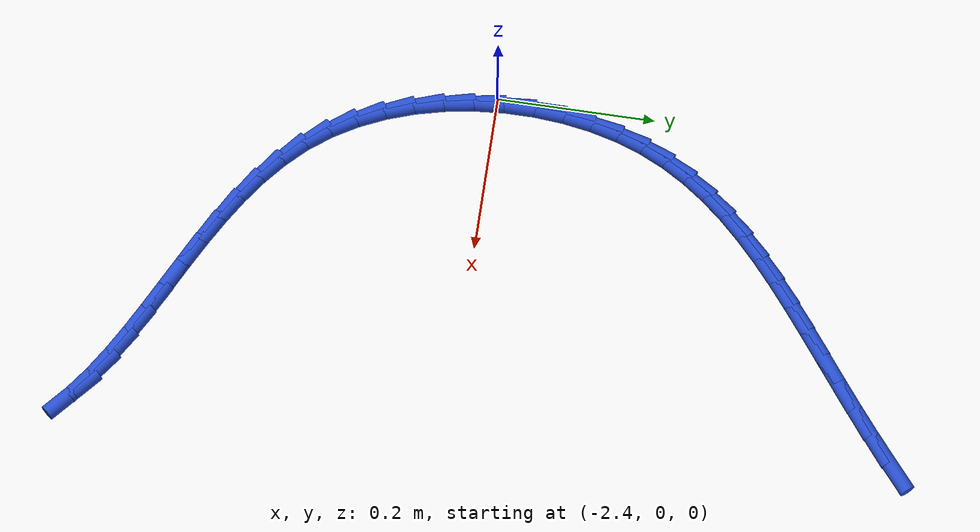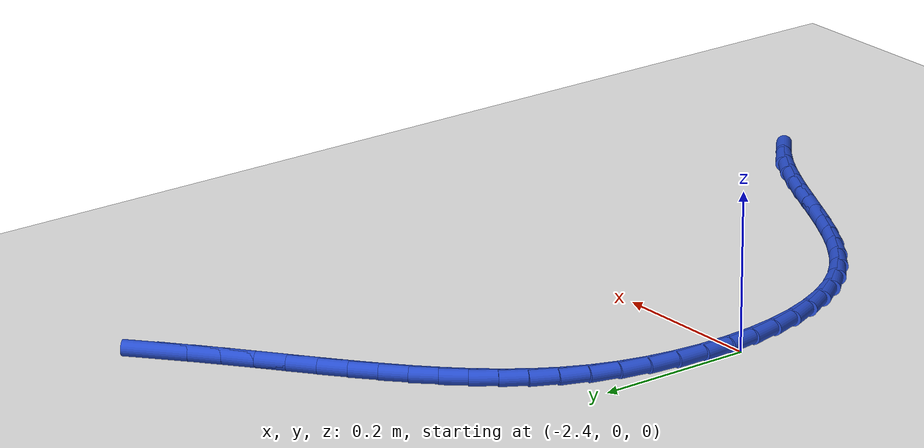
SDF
<sdf version="1.6">
 <world name="default">
  <model name="ground_plane">
   <static>1</static>
   <link name="link">
    <collision name="collision">
     <geometry><plane><normal>0 0 1</normal><size>100 100</size></plane></geometry>
     <surface><friction><ode><mu>100</mu><mu2>50</mu2></ode></friction></surface>
    </collision>
    <visual name="visual">
     <cast_shadows>0</cast_shadows>
     <geometry><plane><normal>0 0 1</normal><size>100 100</size></plane></geometry>
     <material>
      <script><uri>file://media/materials/scripts/gazebo.material</uri><name>Gazebo/WhiteGlow</name></script>
     </material>
    </visual>
   </link>
  </model>
  <model name="line">
   <link name="link_100">
    <pose>-1.9959129807293936 0.5488063109490716 0.01 0 1.57 0.7003295328270931</pose>
    <collision name="collision">
     <geometry><cylinder><radius>0.01</radius><length>0.08</length></cylinder></geometry>
    </collision>
    <visual name="visual">
     <material>
      <script><name>Gazebo/Blue</name><uri>file://media/materials/scripts/gazebo.material</uri></script>
     </material>
     <geometry><cylinder><radius>0.01</radius><length>0.08</length></cylinder></geometry>
    </visual>
   </link>
   <link name="link_101">
    <pose>-2.0274819459457647 0.5221983500029705 0.01 0 1.57 0.6768712510298257</pose>
    <collision name="collision">
     <geometry><cylinder><radius>0.01</radius><length>0.08</length></cylinder></geometry>
    </collision>
    <visual name="visual">
     <material>
      <script><name>Gazebo/Blue</name><uri>file://media/materials/scripts/gazebo.material</uri></script>
     </material>
     <geometry><cylinder><radius>0.01</radius><length>0.08</length></cylinder></geometry>
    </visual>
   </link>
   <link name="link_102">
    <pose>-2.0591221564033217 0.4967754511502029 0.01 0 1.57 0.6610652463664184</pose>
    <collision name="collision">
     <geometry><cylinder><radius>0.01</radius><length>0.08</length></cylinder></geometry>
    </collision>
    <visual name="visual">
     <material>
      <script><name>Gazebo/Blue</name><uri>file://media/materials/scripts/gazebo.material</uri></script>
     </material>
     <geometry><cylinder><radius>0.01</radius><length>0.08</length></cylinder></geometry>
    </visual>
   </link>
   <link name="link_103">
    <pose>-2.090563062542244 0.47232029897582445 0.01 0 1.57 0.6534369887426814</pose>
    <collision name="collision">
     <geometry><cylinder><radius>0.01</radius><length>0.08</length></cylinder></geometry>
    </collision>
    <visual name="visual">
     <material>
      <script><name>Gazebo/Blue</name><uri>file://media/materials/scripts/gazebo.material</uri></script>
     </material>
     <geometry><cylinder><radius>0.01</radius><length>0.08</length></cylinder></geometry>
    </visual>
   </link>
   <link name="link_104">
    <pose>-2.121583525300249 0.4485697332688771 0.01 0 1.57 0.6544695605397516</pose>
    <collision name="collision">
     <geometry><cylinder><radius>0.01</radius><length>0.08</length></cylinder></geometry>
    </collision>
    <visual name="visual">
     <material>
      <script><name>Gazebo/Blue</name><uri>file://media/materials/scripts/gazebo.material</uri></script>
     </material>
     <geometry><cylinder><radius>0.01</radius><length>0.08</length></cylinder></geometry>
    </visual>
   </link>
   <link name="link_105">
    <pose>-2.1519624056150466 0.42526059381839987 0.01 0 1.57 0.6647028571902723</pose>
    <collision name="collision">
     <geometry><cylinder><radius>0.01</radius><length>0.08</length></cylinder></geometry>
    </collision>
    <visual name="visual">
     <material>
      <script><name>Gazebo/Blue</name><uri>file://media/materials/scripts/gazebo.material</uri></script>
     </material>
     <geometry><cylinder><radius>0.01</radius><length>0.08</length></cylinder></geometry>
    </visual>
   </link>
   <link name="link_106">
    <pose>-2.1814785644243537 0.40212972041343437 0.01 0 1.57 0.6847380531395044</pose>
    <collision name="collision">
     <geometry><cylinder><radius>0.01</radius><length>0.08</length></cylinder></geometry>
    </collision>
    <visual name="visual">
     <material>
      <script><name>Gazebo/Blue</name><uri>file://media/materials/scripts/gazebo.material</uri></script>
     </material>
     <geometry><cylinder><radius>0.01</radius><length>0.08</length></cylinder></geometry>
    </visual>
   </link>
   <link name="link_107">
    <pose>-2.2099108626658834 0.37891395284302054 0.01 0 1.57 0.7152157727172358</pose>
    <collision name="collision">
     <geometry><cylinder><radius>0.01</radius><length>0.08</length></cylinder></geometry>
    </collision>
    <visual name="visual">
     <material>
      <script><name>Gazebo/Blue</name><uri>file://media/materials/scripts/gazebo.material</uri></script>
     </material>
     <geometry><cylinder><radius>0.01</radius><length>0.08</length></cylinder></geometry>
    </visual>
   </link>
   <link name="link_108">
    <pose>-2.2370381612773502 0.35535013089619855 0.01 0 1.57 0.7567552886663841</pose>
    <collision name="collision">
     <geometry><cylinder><radius>0.01</radius><length>0.08</length></cylinder></geometry>
    </collision>
    <visual name="visual">
     <material>
      <script><name>Gazebo/Blue</name><uri>file://media/materials/scripts/gazebo.material</uri></script>
     </material>
     <geometry><cylinder><radius>0.01</radius><length>0.08</length></cylinder></geometry>
    </visual>
   </link>
   <link name="link_109">
    <pose>-2.2626393211964664 0.3311750943620092 0.01 0 1.57 0.8098400976747184</pose>
    <collision name="collision">
     <geometry><cylinder><radius>0.01</radius><length>0.08</length></cylinder></geometry>
    </collision>
    <visual name="visual">
     <material>
      <script><name>Gazebo/Blue</name><uri>file://media/materials/scripts/gazebo.material</uri></script>
     </material>
     <geometry><cylinder><radius>0.01</radius><length>0.08</length></cylinder></geometry>
    </visual>
   </link>
   <link name="link_110">
    <pose>-2.286493203360948 0.3061256830294927 0.01 0 1.57 0.8746396993155675</pose>
    <collision name="collision">
     <geometry><cylinder><radius>0.01</radius><length>0.08</length></cylinder></geometry>
    </collision>
    <visual name="visual">
     <material>
      <script><name>Gazebo/Blue</name><uri>file://media/materials/scripts/gazebo.material</uri></script>
     </material>
     <geometry><cylinder><radius>0.01</radius><length>0.08</length></cylinder></geometry>
    </visual>
   </link>
   <link name="link_111">
    <pose>-2.3083786687085075 0.2799387366876899 0.01 0 1.57 0.9507760696407246</pose>
    <collision name="collision">
     <geometry><cylinder><radius>0.01</radius><length>0.08</length></cylinder></geometry>
    </collision>
    <visual name="visual">
     <material>
      <script><name>Gazebo/Blue</name><uri>file://media/materials/scripts/gazebo.material</uri></script>
     </material>
     <geometry><cylinder><radius>0.01</radius><length>0.08</length></cylinder></geometry>
    </visual>
   </link>
   <link name="link_112">
    <pose>-2.32807457817686 0.2523510951256408 0.01 0 1.57 1.0370820784498898</pose>
    <collision name="collision">
     <geometry><cylinder><radius>0.01</radius><length>0.08</length></cylinder></geometry>
    </collision>
    <visual name="visual">
     <material>
      <script><name>Gazebo/Blue</name><uri>file://media/materials/scripts/gazebo.material</uri></script>
     </material>
     <geometry><cylinder><radius>0.01</radius><length>0.08</length></cylinder></geometry>
    </visual>
   </link>
   <link name="link_113">
    <pose>-2.3453597927037184 0.2230995981323863 0.01 0 1.57 1.131449111054911</pose>
    <collision name="collision">
     <geometry><cylinder><radius>0.01</radius><length>0.08</length></cylinder></geometry>
    </collision>
    <visual name="visual">
     <material>
      <script><name>Gazebo/Blue</name><uri>file://media/materials/scripts/gazebo.material</uri></script>
     </material>
     <geometry><cylinder><radius>0.01</radius><length>0.08</length></cylinder></geometry>
    </visual>
   </link>
   <link name="link_114">
    <pose>-2.3600131732267973 0.19192108549696613 0.01 0 1.57 1.2302345782017161</pose>
    <collision name="collision">
     <geometry><cylinder><radius>0.01</radius><length>0.08</length></cylinder></geometry>
    </collision>
    <visual name="visual">
     <material>
      <script><name>Gazebo/Blue</name><uri>file://media/materials/scripts/gazebo.material</uri></script>
     </material>
     <geometry><cylinder><radius>0.01</radius><length>0.08</length></cylinder></geometry>
    </visual>
   </link>
   <link name="link_115">
    <pose>-2.371824050017016 0.15859177246287076 0.01 0 1.57 1.3243710809919507</pose>
    <collision name="collision">
     <geometry><cylinder><radius>0.01</radius><length>0.08</length></cylinder></geometry>
    </collision>
    <visual name="visual">
     <material>
      <script><name>Gazebo/Blue</name><uri>file://media/materials/scripts/gazebo.material</uri></script>
     </material>
     <geometry><cylinder><radius>0.01</radius><length>0.08</length></cylinder></geometry>
    </visual>
   </link>
   <link name="link_116">
    <pose>-2.3806964312653225 0.12331918113221063 0.01 0 1.57 1.4113468823371842</pose>
    <collision name="collision">
     <geometry><cylinder><radius>0.01</radius><length>0.08</length></cylinder></geometry>
    </collision>
    <visual name="visual">
     <material>
      <script><name>Gazebo/Blue</name><uri>file://media/materials/scripts/gazebo.material</uri></script>
     </material>
     <geometry><cylinder><radius>0.01</radius><length>0.08</length></cylinder></geometry>
    </visual>
   </link>
   <link name="link_117">
    <pose>-2.3866051049084205 0.08657703820679025 0.01 0 1.57 1.4935455218640614</pose>
    <collision name="collision">
     <geometry><cylinder><radius>0.01</radius><length>0.08</length></cylinder></geometry>
    </collision>
    <visual name="visual">
     <material>
      <script><name>Gazebo/Blue</name><uri>file://media/materials/scripts/gazebo.material</uri></script>
     </material>
     <geometry><cylinder><radius>0.01</radius><length>0.08</length></cylinder></geometry>
    </visual>
   </link>
   <link name="link_118">
    <pose>-2.3895259025246904 0.04884299555390224 0.01 0 1.57 -1.5684106866042349</pose>
    <collision name="collision">
     <geometry><cylinder><radius>0.01</radius><length>0.08</length></cylinder></geometry>
    </collision>
    <visual name="visual">
     <material>
      <script><name>Gazebo/Blue</name><uri>file://media/materials/scripts/gazebo.material</uri></script>
     </material>
     <geometry><cylinder><radius>0.01</radius><length>0.08</length></cylinder></geometry>
    </visual>
   </link>
   <link name="link_119">
    <pose>-2.3894346556925146 0.010594705040836198 0.01 0 1.57 -1.4892881632886064</pose>
    <collision name="collision">
     <geometry><cylinder><radius>0.01</radius><length>0.08</length></cylinder></geometry>
    </collision>
    <visual name="visual">
     <material>
      <script><name>Gazebo/Blue</name><uri>file://media/materials/scripts/gazebo.material</uri></script>
     </material>
     <geometry><cylinder><radius>0.01</radius><length>0.08</length></cylinder></geometry>
    </visual>
   </link>
   <link name="link_120">
    <pose>-2.3863071959902737 -0.027690181465117224 0.01 0 1.57 -1.4087206606434164</pose>
    <collision name="collision">
     <geometry><cylinder><radius>0.01</radius><length>0.08</length></cylinder></geometry>
    </collision>
    <visual name="visual">
     <material>
      <script><name>Gazebo/Blue</name><uri>file://media/materials/scripts/gazebo.material</uri></script>
     </material>
     <geometry><cylinder><radius>0.01</radius><length>0.08</length></cylinder></geometry>
    </visual>
   </link>
   <link name="link_121">
    <pose>-2.3801193549963475 -0.06553401209666741 0.01 0 1.57 -1.3247700949636043</pose>
    <collision name="collision">
     <geometry><cylinder><radius>0.01</radius><length>0.08</length></cylinder></geometry>
    </collision>
    <visual name="visual">
     <material>
      <script><name>Gazebo/Blue</name><uri>file://media/materials/scripts/gazebo.material</uri></script>
     </material>
     <geometry><cylinder><radius>0.01</radius><length>0.08</length></cylinder></geometry>
    </visual>
   </link>
   <link name="link_122">
    <pose>-2.3708469642891186 -0.10245913498652469 0.01 0 1.57 -1.2354751291103834</pose>
    <collision name="collision">
     <geometry><cylinder><radius>0.01</radius><length>0.08</length></cylinder></geometry>
    </collision>
    <visual name="visual">
     <material>
      <script><name>Gazebo/Blue</name><uri>file://media/materials/scripts/gazebo.material</uri></script>
     </material>
     <geometry><cylinder><radius>0.01</radius><length>0.08</length></cylinder></geometry>
    </visual>
   </link>
   <link name="link_123">
    <pose>-2.358465855446968 -0.13798789826739655 0.01 0 1.57 -1.1388532564708023</pose>
    <collision name="collision">
     <geometry><cylinder><radius>0.01</radius><length>0.08</length></cylinder></geometry>
    </collision>
    <visual name="visual">
     <material>
      <script><name>Gazebo/Blue</name><uri>file://media/materials/scripts/gazebo.material</uri></script>
     </material>
     <geometry><cylinder><radius>0.01</radius><length>0.08</length></cylinder></geometry>
    </visual>
   </link>
   <link name="link_124">
    <pose>-2.3429518600482764 -0.1716426500719933 0.01 0 1.57 -1.032983592206985</pose>
    <collision name="collision">
     <geometry><cylinder><radius>0.01</radius><length>0.08</length></cylinder></geometry>
    </collision>
    <visual name="visual">
     <material>
      <script><name>Gazebo/Blue</name><uri>file://media/materials/scripts/gazebo.material</uri></script>
     </material>
     <geometry><cylinder><radius>0.01</radius><length>0.08</length></cylinder></geometry>
    </visual>
   </link>
   <link name="link_125">
    <pose>-2.3242808096714254 -0.20294573853302433 0.01 0 1.57 -0.916754176020899</pose>
    <collision name="collision">
     <geometry><cylinder><radius>0.01</radius><length>0.08</length></cylinder></geometry>
    </collision>
    <visual name="visual">
     <material>
      <script><name>Gazebo/Blue</name><uri>file://media/materials/scripts/gazebo.material</uri></script>
     </material>
     <geometry><cylinder><radius>0.01</radius><length>0.08</length></cylinder></geometry>
    </visual>
   </link>
   <link name="link_126">
    <pose>-2.30243850713636 -0.23143809245943164 0.01 0 1.57 -0.8021196322420572</pose>
    <collision name="collision">
     <geometry><cylinder><radius>0.01</radius><length>0.08</length></cylinder></geometry>
    </collision>
    <visual name="visual">
     <material>
      <script><name>Gazebo/Blue</name><uri>file://media/materials/scripts/gazebo.material</uri></script>
     </material>
     <geometry><cylinder><radius>0.01</radius><length>0.08</length></cylinder></geometry>
    </visual>
   </link>
   <link name="link_127">
    <pose>-2.2776373413172837 -0.25708286712864514 0.01 0 1.57 -0.7035490473542859</pose>
    <collision name="collision">
     <geometry><cylinder><radius>0.01</radius><length>0.08</length></cylinder></geometry>
    </collision>
    <visual name="visual">
     <material>
      <script><name>Gazebo/Blue</name><uri>file://media/materials/scripts/gazebo.material</uri></script>
     </material>
     <geometry><cylinder><radius>0.01</radius><length>0.08</length></cylinder></geometry>
    </visual>
   </link>
   <link name="link_128">
    <pose>-2.2503147684429146 -0.28026261430118615 0.01 0 1.57 -0.6228918759934995</pose>
    <collision name="collision">
     <geometry><cylinder><radius>0.01</radius><length>0.08</length></cylinder></geometry>
    </collision>
    <visual name="visual">
     <material>
      <script><name>Gazebo/Blue</name><uri>file://media/materials/scripts/gazebo.material</uri></script>
     </material>
     <geometry><cylinder><radius>0.01</radius><length>0.08</length></cylinder></geometry>
    </visual>
   </link>
   <link name="link_129">
    <pose>-2.2209179122392855 -0.3013779004087027 0.01 0 1.57 -0.56002080537229</pose>
    <collision name="collision">
     <geometry><cylinder><radius>0.01</radius><length>0.08</length></cylinder></geometry>
    </collision>
    <visual name="visual">
     <material>
      <script><name>Gazebo/Blue</name><uri>file://media/materials/scripts/gazebo.material</uri></script>
     </material>
     <geometry><cylinder><radius>0.01</radius><length>0.08</length></cylinder></geometry>
    </visual>
   </link>
   <link name="link_130">
    <pose>-2.1898938964324293 -0.3208292918828425 0.01 0 1.57 -0.5141164405934937</pose>
    <collision name="collision">
     <geometry><cylinder><radius>0.01</radius><length>0.08</length></cylinder></geometry>
    </collision>
    <visual name="visual">
     <material>
      <script><name>Gazebo/Blue</name><uri>file://media/materials/scripts/gazebo.material</uri></script>
     </material>
     <geometry><cylinder><radius>0.01</radius><length>0.08</length></cylinder></geometry>
    </visual>
   </link>
   <link name="link_131">
    <pose>-2.157689844748376 -0.33901735515525366 0.01 0 1.57 -0.48424151261157355</pose>
    <collision name="collision">
     <geometry><cylinder><radius>0.01</radius><length>0.08</length></cylinder></geometry>
    </collision>
    <visual name="visual">
     <material>
      <script><name>Gazebo/Blue</name><uri>file://media/materials/scripts/gazebo.material</uri></script>
     </material>
     <geometry><cylinder><radius>0.01</radius><length>0.08</length></cylinder></geometry>
    </visual>
   </link>
   <link name="link_132">
    <pose>-2.124752880913162 -0.3563426566575834 0.01 0 1.57 -0.4696908491218687</pose>
    <collision name="collision">
     <geometry><cylinder><radius>0.01</radius><length>0.08</length></cylinder></geometry>
    </collision>
    <visual name="visual">
     <material>
      <script><name>Gazebo/Blue</name><uri>file://media/materials/scripts/gazebo.material</uri></script>
     </material>
     <geometry><cylinder><radius>0.01</radius><length>0.08</length></cylinder></geometry>
    </visual>
   </link>
   <link name="link_133">
    <pose>-2.0915301286528165 -0.37320576282147977 0.01 0 1.57 -0.4701780202745502</pose>
    <collision name="collision">
     <geometry><cylinder><radius>0.01</radius><length>0.08</length></cylinder></geometry>
    </collision>
    <visual name="visual">
     <material>
      <script><name>Gazebo/Blue</name><uri>file://media/materials/scripts/gazebo.material</uri></script>
     </material>
     <geometry><cylinder><radius>0.01</radius><length>0.08</length></cylinder></geometry>
    </visual>
   </link>
   <link name="link_134">
    <pose>-2.0584687116933735 -0.3900072400785907 0.01 0 1.57 -0.48592245415369406</pose>
    <collision name="collision">
     <geometry><cylinder><radius>0.01</radius><length>0.08</length></cylinder></geometry>
    </collision>
    <visual name="visual">
     <material>
      <script><name>Gazebo/Blue</name><uri>file://media/materials/scripts/gazebo.material</uri></script>
     </material>
     <geometry><cylinder><radius>0.01</radius><length>0.08</length></cylinder></geometry>
    </visual>
   </link>
   <link name="link_135">
    <pose>-2.026015753760864 -0.4071476548605644 0.01 0 1.57 -0.5176697417259591</pose>
    <collision name="collision">
     <geometry><cylinder><radius>0.01</radius><length>0.08</length></cylinder></geometry>
    </collision>
    <visual name="visual">
     <material>
      <script><name>Gazebo/Blue</name><uri>file://media/materials/scripts/gazebo.material</uri></script>
     </material>
     <geometry><cylinder><radius>0.01</radius><length>0.08</length></cylinder></geometry>
    </visual>
   </link>
   <link name="link_136">
    <pose>-1.994618378581322 -0.425027573599048 0.01 0 1.57 -0.5666365719715932</pose>
    <collision name="collision">
     <geometry><cylinder><radius>0.01</radius><length>0.08</length></cylinder></geometry>
    </collision>
    <visual name="visual">
     <material>
      <script><name>Gazebo/Blue</name><uri>file://media/materials/scripts/gazebo.material</uri></script>
     </material>
     <geometry><cylinder><radius>0.01</radius><length>0.08</length></cylinder></geometry>
    </visual>
   </link>
   <link name="link_137">
    <pose>-1.9647237098807793 -0.44404756272568946 0.01 0 1.57 -0.6343234557479419</pose>
    <collision name="collision">
     <geometry><cylinder><radius>0.01</radius><length>0.08</length></cylinder></geometry>
    </collision>
    <visual name="visual">
     <material>
      <script><name>Gazebo/Blue</name><uri>file://media/materials/scripts/gazebo.material</uri></script>
     </material>
     <geometry><cylinder><radius>0.01</radius><length>0.08</length></cylinder></geometry>
    </visual>
   </link>
   <link name="link_138">
    <pose>-1.936778871385268 -0.4646081886721369 0.01 0 1.57 -0.721722623133184</pose>
    <collision name="collision">
     <geometry><cylinder><radius>0.01</radius><length>0.08</length></cylinder></geometry>
    </collision>
    <visual name="visual">
     <material>
      <script><name>Gazebo/Blue</name><uri>file://media/materials/scripts/gazebo.material</uri></script>
     </material>
     <geometry><cylinder><radius>0.01</radius><length>0.08</length></cylinder></geometry>
    </visual>
   </link>
  </model>
 </world>
</sdf>
